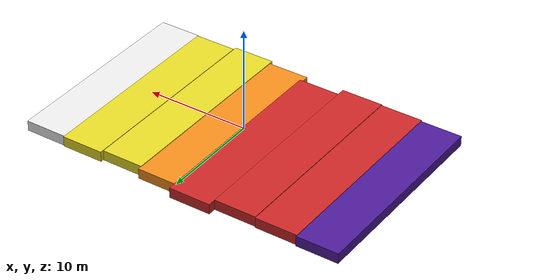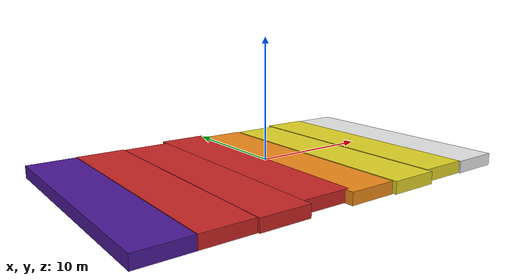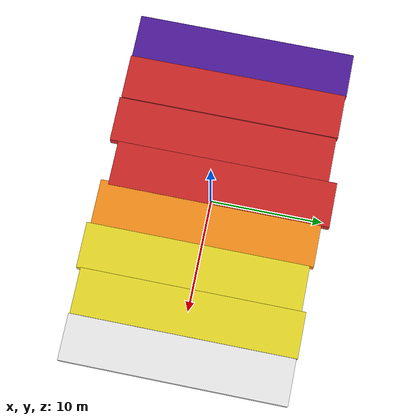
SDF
<?xml version='1.0'?>
<sdf version='1.6'>
  <model name='Floor'>
    <link name='link_0'>
      <inertial>
        <mass>82.3581</mass>
        <inertia>
          <ixx>2759.16</ixx>
          <ixy>0</ixy>
          <ixz>0</ixz>
          <iyy>122.946</iyy>
          <iyz>0</iyz>
          <izz>2868.38</izz>
        </inertia>
        <pose frame=''>0 0 0 0 -0 0</pose>
      </inertial>
      <pose frame=''>14.2499 -0.103488 -0.460424 0 -0 0</pose>
      <self_collide>0</self_collide>
      <enable_wind>0</enable_wind>
      <kinematic>0</kinematic>
      <gravity>1</gravity>
      <visual name='visual'>
        <pose frame=''>0 0 0 0 -0 0</pose>
        <geometry>
          <box>
            <size>4.11265 20.0256 1</size>
          </box>
        </geometry>
        <material>
          <lighting>1</lighting>
          <script>
            <uri>file://media/materials/scripts/gazebo.material</uri>
            <name>Gazebo/White</name>
          </script>
          <emissive>0 0 0 1</emissive>
          <shader type='vertex'>
            <normal_map>__default__</normal_map>
          </shader>
          <ambient>1 1 1 1</ambient>
          <diffuse>1 1 1 1</diffuse>
          <specular>0 0 0 1</specular>
        </material>
        <transparency>0</transparency>
        <cast_shadows>1</cast_shadows>
      </visual>
    </link>
    <link name='link_0_clone'>
      <inertial>
        <mass>82.3581</mass>
        <inertia>
          <ixx>2759.16</ixx>
          <ixy>0</ixy>
          <ixz>0</ixz>
          <iyy>122.946</iyy>
          <iyz>0</iyz>
          <izz>2868.38</izz>
        </inertia>
        <pose frame=''>0 0 0 0 -0 0</pose>
      </inertial>
      <pose frame=''>10.1287 0.009256 -0.448687 0 -0 0</pose>
      <self_collide>0</self_collide>
      <enable_wind>0</enable_wind>
      <kinematic>0</kinematic>
      <gravity>1</gravity>
      <visual name='visual'>
        <pose frame=''>0 0 0 0 -0 0</pose>
        <geometry>
          <box>
            <size>4.11265 20.0256 1</size>
          </box>
        </geometry>
        <material>
          <lighting>1</lighting>
          <script>
            <uri>file://media/materials/scripts/gazebo.material</uri>
            <name>Gazebo/Yellow</name>
          </script>
          <shader type='pixel'>
            <normal_map>__default__</normal_map>
          </shader>
          <emissive>0 0 0 1</emissive>
          <ambient>0.3 0.3 0.3 1</ambient>
          <diffuse>0.7 0.7 0.7 1</diffuse>
          <specular>0.01 0.01 0.01 1</specular>
        </material>
        <transparency>0</transparency>
        <cast_shadows>1</cast_shadows>
      </visual>
    </link>
    <link name='link_0_clone_0'>
      <inertial>
        <mass>82.3581</mass>
        <inertia>
          <ixx>2759.16</ixx>
          <ixy>0</ixy>
          <ixz>0</ixz>
          <iyy>122.946</iyy>
          <iyz>0</iyz>
          <izz>2868.38</izz>
        </inertia>
        <pose frame=''>0 0 0 0 -0 0</pose>
      </inertial>
      <pose frame=''>6.06535 -0.372302 -0.508059 0 -0 0</pose>
      <self_collide>0</self_collide>
      <enable_wind>0</enable_wind>
      <kinematic>0</kinematic>
      <gravity>1</gravity>
      <visual name='visual'>
        <pose frame=''>0 0 0 0 -0 0</pose>
        <geometry>
          <box>
            <size>4.11265 20.0256 1</size>
          </box>
        </geometry>
        <material>
          <lighting>1</lighting>
          <script>
            <uri>file://media/materials/scripts/gazebo.material</uri>
            <name>Gazebo/DarkYellow</name>
          </script>
          <shader type='pixel'>
            <normal_map>__default__</normal_map>
          </shader>
          <emissive>0 0 0 1</emissive>
        </material>
        <transparency>0</transparency>
        <cast_shadows>1</cast_shadows>
      </visual>
    </link>
    <link name='link_0_clone_1'>
      <inertial>
        <mass>82.3581</mass>
        <inertia>
          <ixx>2759.16</ixx>
          <ixy>0</ixy>
          <ixz>0</ixz>
          <iyy>122.946</iyy>
          <iyz>0</iyz>
          <izz>2868.38</izz>
        </inertia>
        <pose frame=''>0 0 0 0 -0 0</pose>
      </inertial>
      <pose frame=''>1.98676 -0.022932 -0.572348 0 -0 0</pose>
      <self_collide>0</self_collide>
      <enable_wind>0</enable_wind>
      <kinematic>0</kinematic>
      <gravity>1</gravity>
      <visual name='visual'>
        <pose frame=''>0 0 0 0 -0 0</pose>
        <geometry>
          <box>
            <size>4.11265 20.0256 1</size>
          </box>
        </geometry>
        <material>
          <lighting>1</lighting>
          <script>
            <uri>file://media/materials/scripts/gazebo.material</uri>
            <name>Gazebo/Orange</name>
          </script>
          <shader type='pixel'>
            <normal_map>__default__</normal_map>
          </shader>
          <emissive>0 0 0 1</emissive>
        </material>
        <transparency>0</transparency>
        <cast_shadows>1</cast_shadows>
      </visual>
    </link>
    <link name='link_0_clone_2'>
      <inertial>
        <mass>82.3581</mass>
        <inertia>
          <ixx>2759.16</ixx>
          <ixy>0</ixy>
          <ixz>0</ixz>
          <iyy>122.946</iyy>
          <iyz>0</iyz>
          <izz>2868.38</izz>
        </inertia>
        <pose frame=''>0 0 0 0 -0 0</pose>
      </inertial>
      <pose frame=''>-1.81972 0.703833 -0.551499 0 -0 0</pose>
      <self_collide>0</self_collide>
      <enable_wind>0</enable_wind>
      <kinematic>0</kinematic>
      <gravity>1</gravity>
      <visual name='visual'>
        <pose frame=''>0 0 0 0 -0 0</pose>
        <geometry>
          <box>
            <size>4.11265 20.0256 1</size>
          </box>
        </geometry>
        <material>
          <lighting>1</lighting>
          <script>
            <uri>file://media/materials/scripts/gazebo.material</uri>
            <name>Gazebo/Red</name>
          </script>
          <shader type='pixel'>
            <normal_map>__default__</normal_map>
          </shader>
        </material>
        <transparency>0</transparency>
        <cast_shadows>1</cast_shadows>
      </visual>
    </link>
    <link name='link_0_clone_3'>
      <inertial>
        <mass>82.3581</mass>
        <inertia>
          <ixx>2759.16</ixx>
          <ixy>0</ixy>
          <ixz>0</ixz>
          <iyy>122.946</iyy>
          <iyz>0</iyz>
          <izz>2868.38</izz>
        </inertia>
        <pose frame=''>0 0 0 0 -0 0</pose>
      </inertial>
      <pose frame=''>-5.93046 -0.067702 -0.546592 0 -0 0</pose>
      <self_collide>0</self_collide>
      <enable_wind>0</enable_wind>
      <kinematic>0</kinematic>
      <gravity>1</gravity>
      <visual name='visual'>
        <pose frame=''>0 0 0 0 -0 0</pose>
        <geometry>
          <box>
            <size>4.11265 20.0256 1</size>
          </box>
        </geometry>
        <material>
          <lighting>1</lighting>
          <script>
            <uri>file://media/materials/scripts/gazebo.material</uri>
            <name>Gazebo/RedBright</name>
          </script>
          <shader type='pixel'>
            <normal_map>__default__</normal_map>
          </shader>
        </material>
        <transparency>0</transparency>
        <cast_shadows>1</cast_shadows>
      </visual>
    </link>
    <link name='link_0_clone_4'>
      <inertial>
        <mass>82.3581</mass>
        <inertia>
          <ixx>2759.16</ixx>
          <ixy>0</ixy>
          <ixz>0</ixz>
          <iyy>122.946</iyy>
          <iyz>0</iyz>
          <izz>2868.38</izz>
        </inertia>
        <pose frame=''>0 0 0 0 -0 0</pose>
      </inertial>
      <pose frame=''>-10.1064 0.059717 -0.532543 0 -0 0</pose>
      <self_collide>0</self_collide>
      <enable_wind>0</enable_wind>
      <kinematic>0</kinematic>
      <gravity>1</gravity>
      <visual name='visual'>
        <pose frame=''>0 0 0 0 -0 0</pose>
        <geometry>
          <box>
            <size>4.11265 20.0256 1</size>
          </box>
        </geometry>
        <material>
          <lighting>1</lighting>
          <script>
            <uri>file://media/materials/scripts/gazebo.material</uri>
            <name>Gazebo/RedGlow</name>
          </script>
          <shader type='pixel'>
            <normal_map>__default__</normal_map>
          </shader>
        </material>
        <transparency>0</transparency>
        <cast_shadows>1</cast_shadows>
      </visual>
    </link>
    <link name='link_0_clone_5'>
      <inertial>
        <mass>82.3581</mass>
        <inertia>
          <ixx>2759.16</ixx>
          <ixy>0</ixy>
          <ixz>0</ixz>
          <iyy>122.946</iyy>
          <iyz>0</iyz>
          <izz>2868.38</izz>
        </inertia>
        <pose frame=''>0 0 0 0 -0 0</pose>
      </inertial>
      <pose frame=''>-14.1696 0.150945 -0.585164 0 -0 0</pose>
      <self_collide>0</self_collide>
      <enable_wind>0</enable_wind>
      <kinematic>0</kinematic>
      <visual name='visual'>
        <pose frame=''>0 0 0 0 -0 0</pose>
        <geometry>
          <box>
            <size>4.11265 20.0256 1</size>
          </box>
        </geometry>
        <material>
          <lighting>1</lighting>
          <script>
            <uri>file://media/materials/scripts/gazebo.material</uri>
            <name>Gazebo/Indigo</name>
          </script>
          <shader type='pixel'/>
        </material>
        <transparency>0</transparency>
        <cast_shadows>1</cast_shadows>
      </visual>
    </link>
    <static>0</static>
    <allow_auto_disable>1</allow_auto_disable>
  </model>
</sdf>
